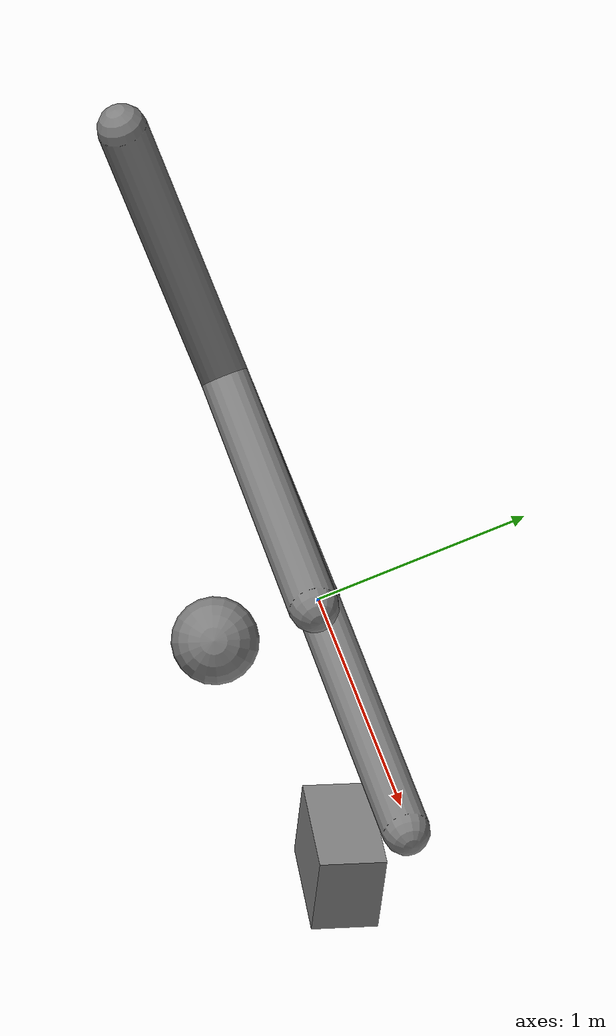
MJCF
<mujoco model="model for inertia-related tests">
  <default>
    <geom type="capsule" size="0.1"/>
    <joint axis="0 1 0"/>
  </default>

  <worldbody>
    <body pos="1 -.5 0" euler="10 20 30">
      <geom type="box" size="0.15 .2 .25" pos=".1 .2 .3" euler="10 20 30"/>
      <freejoint name="6 non-simple dofs" align="false"/>
    </body>

    <body pos="0 -.5 0">
      <geom type="sphere" size="0.2"/>
      <joint type="ball" name="3 simple dofs"/>
    </body>

    <body>
      <geom fromto="0 0 0 0 0 1"/>
      <joint/>
      <body pos="0 0 1">
        <geom fromto="0 0 0 1 0 1"/>
        <joint/>
      </body>
      <body pos="0 0 1">
        <geom fromto="0 0 0 -1 0 1"/>
        <joint/>
        <body pos="-1 0 1">
          <geom fromto="0 0 0 1 0 1"/>
          <joint/>
        </body>
        <body pos="-1 0 1">
          <geom fromto="0 0 0 -1 0 1"/>
          <joint/>
        </body>
      </body>
    </body>
  </worldbody>
</mujoco>
